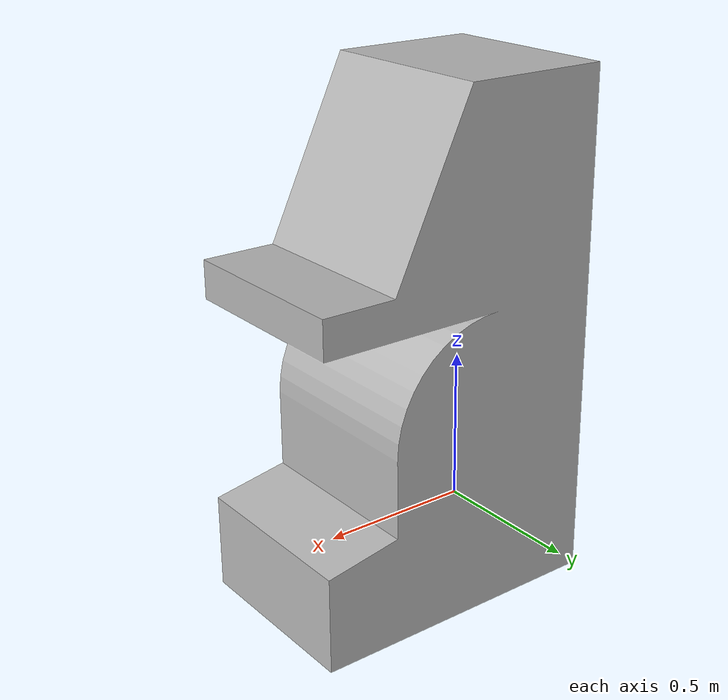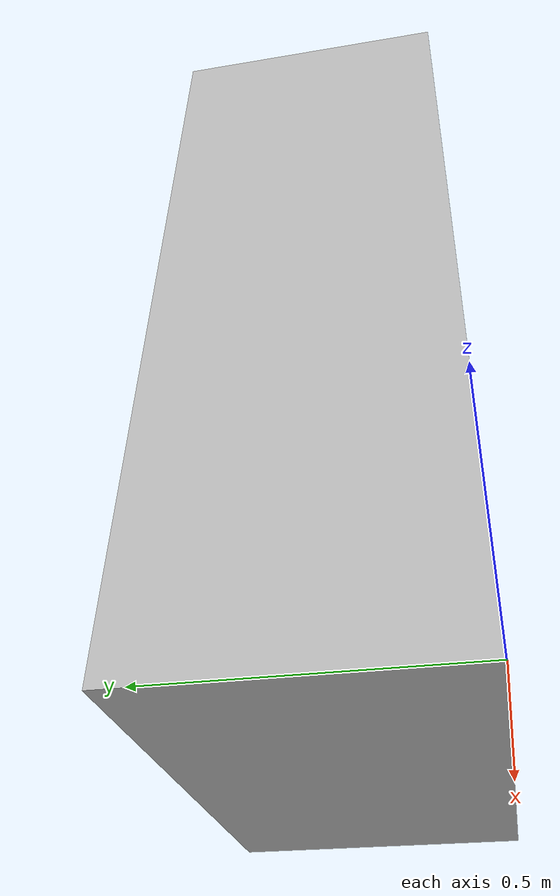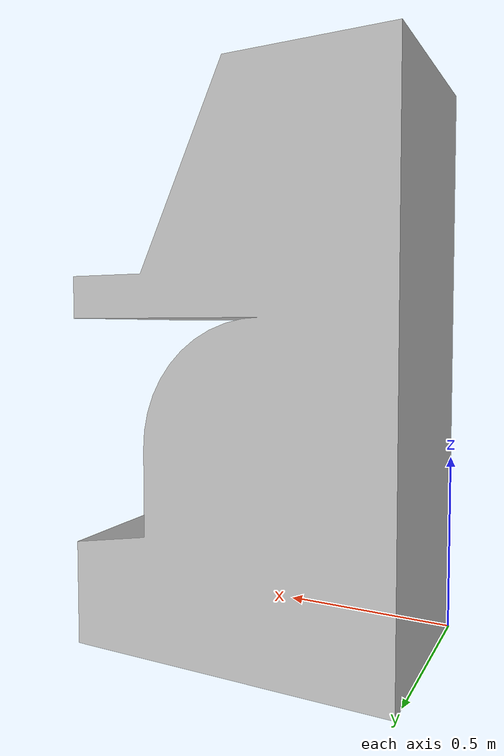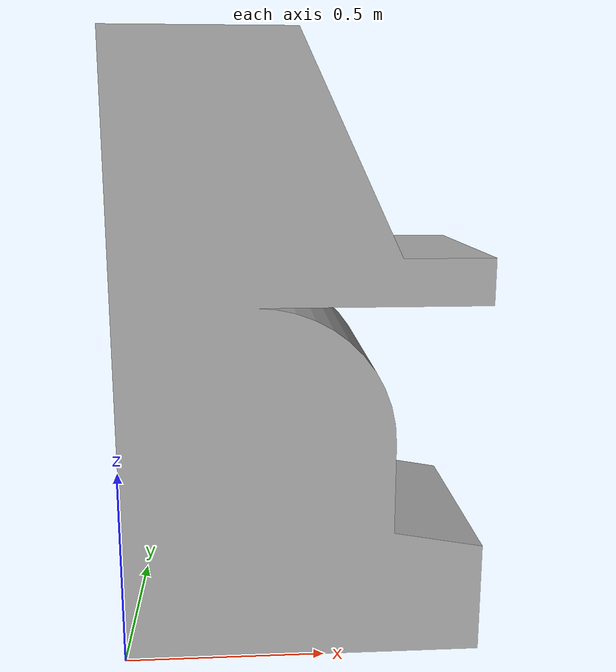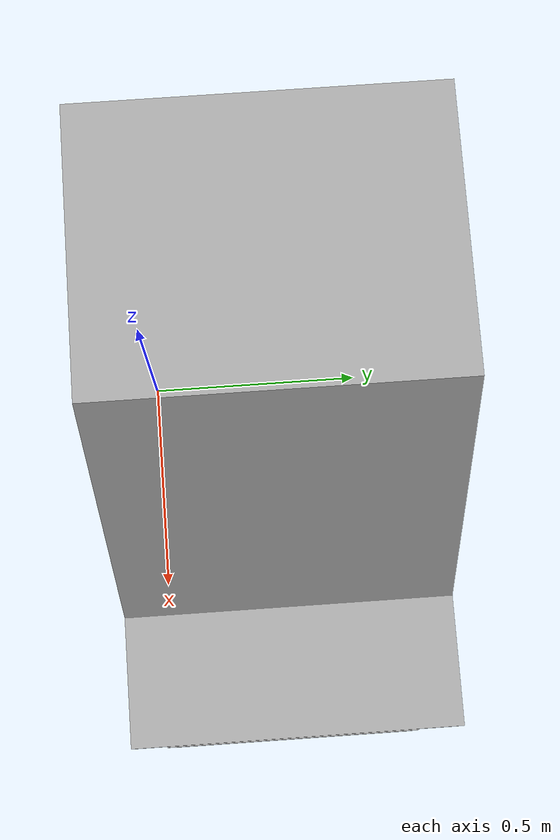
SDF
<?xml version='1.0'?>
<sdf version="1.4">
<model name="echo">
  <pose>0 0 0 0 0 0</pose>
    <link name="link">
      <inertial>
        <mass>100</mass>
        <inertia>
          <ixx>0.001</ixx>
          <ixy>0.0</ixy>
          <ixz>0.0</ixz>
          <iyy>0.001</iyy>
          <iyz>0.0</iyz>
          <izz>0.001</izz>
        </inertia>
      </inertial>
      <collision name="collision">
        <geometry>
          <mesh>
            <uri>model://echo/ECHO.STL</uri>
          </mesh>
        </geometry>
      </collision>
      <visual name="visual">
        <geometry>
          <mesh>
            <uri>model://echo/ECHO.STL</uri>
          </mesh>
        </geometry>
      </visual>
    </link>
  </model>
</sdf>
